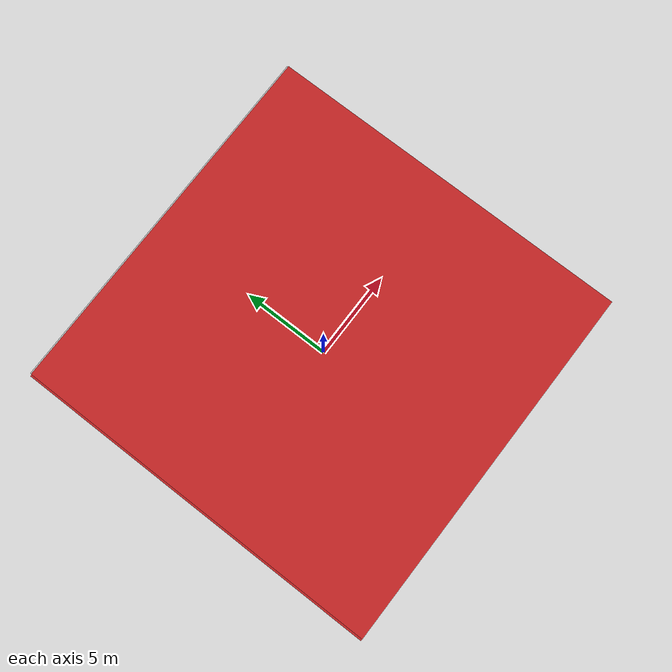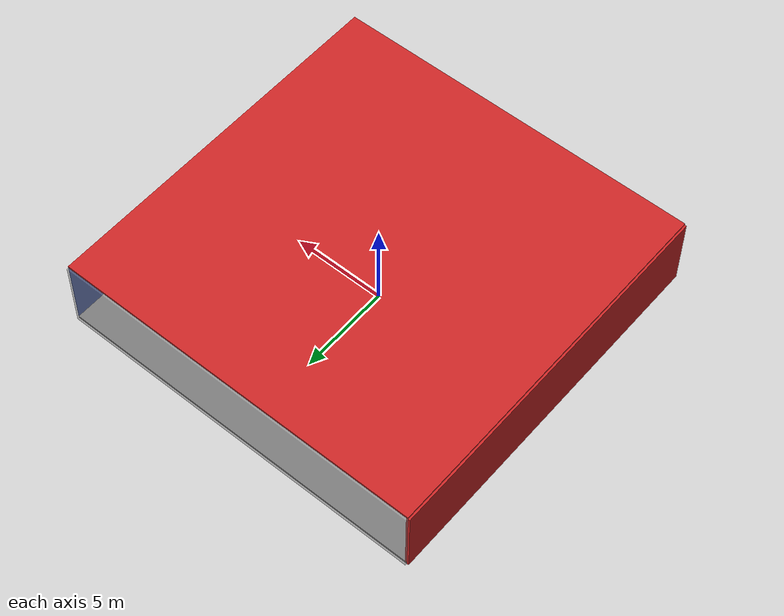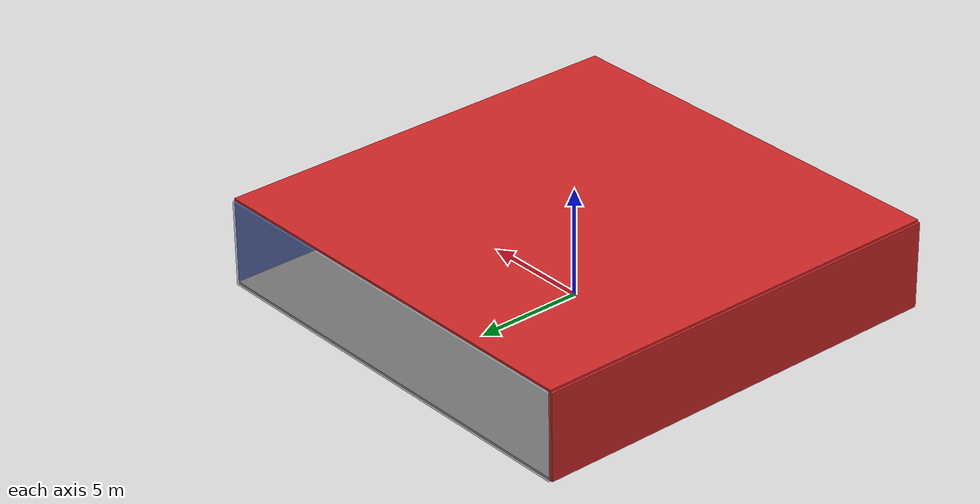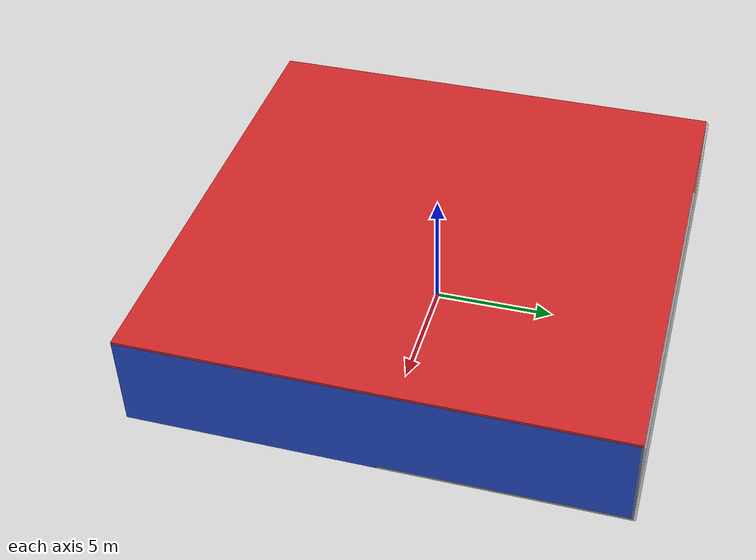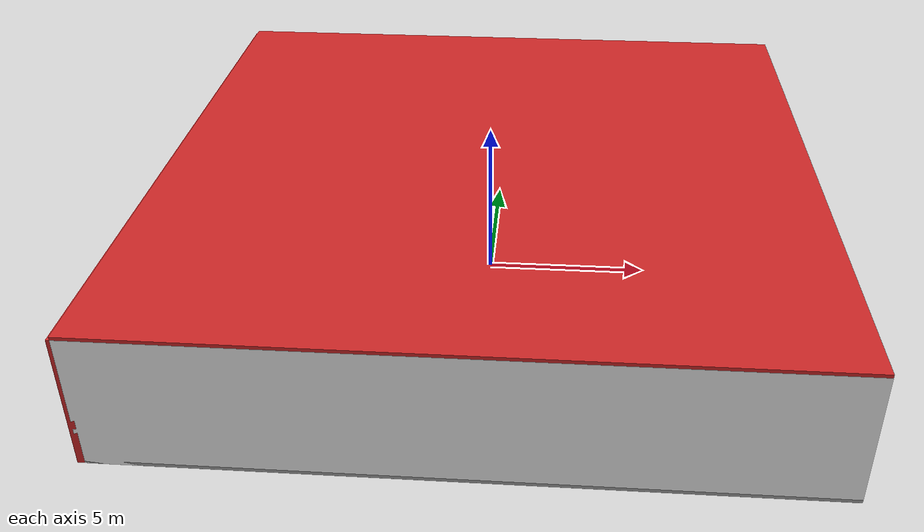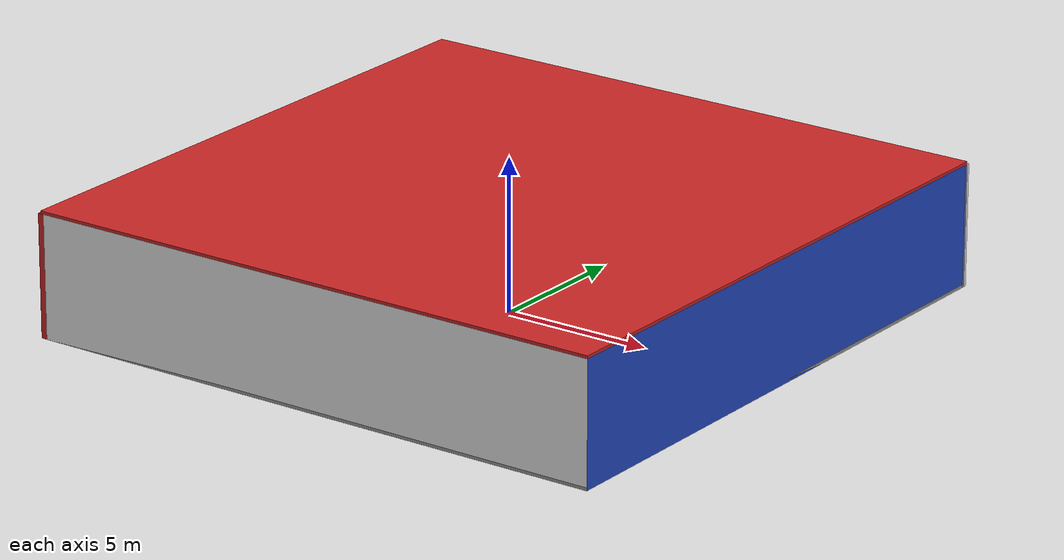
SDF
<sdf version="1.4">
 <world name="default">
  <physics type="ode">
   <max_step_size>0.001</max_step_size>
   <real_time_factor>1</real_time_factor>
   <real_time_update_rate>1000</real_time_update_rate>
   <gravity>0 0 -9.8</gravity>
  </physics>
  <scene><ambient>0.4 0.4 0.4 1</ambient><background>0.7 0.7 0.7 1</background><shadows>1</shadows></scene>
  <model name="Surrounding">
   <static>1</static>
   <link name="Ceiling">
    <collision name="Ceiling_Collision"><geometry><box><size>20 20 0.1</size></box></geometry></collision>
    <visual name="Ceiling_Visual">
     <geometry><box><size>20 20 0.1</size></box></geometry>
     <material>
      <script><uri>file://media/materials/scripts/gazebo.material</uri><name>Gazebo/RedGlow</name></script>
     </material>
    </visual>
    <pose>0 0 4.05 0 0 0</pose>
   </link>
   <link name="Wall_South">
    <collision name="Wall_South_Collision">
     <geometry><box><size>20 0 4</size></box></geometry>
     <pose>0 0 2 0 -0 0</pose>
    </collision>
    <visual name="Wall_South_Visual">
     <pose>0 0 2 0 -0 0</pose>
     <geometry><box><size>20 0 4</size></box></geometry>
     <material>
      <script><uri>file://media/materials/scripts/gazebo.material</uri><name>Gazebo/White</name></script>
     </material>
    </visual>
    <velocity_decay><linear>0</linear><angular>0</angular></velocity_decay>
    <pose>0 -10 0 0 -0 0</pose>
   </link>
   <link name="Wall_East">
    <collision name="Wall_21_Collision">
     <geometry><box><size>20 0 4</size></box></geometry>
     <pose>0 0 2 0 -0 0</pose>
    </collision>
    <visual name="Wall_21_Visual">
     <pose>0 0 2 0 -0 0</pose>
     <geometry><box><size>20 0 4</size></box></geometry>
     <material>
      <script><uri>file://media/materials/scripts/gazebo.material</uri><name>Gazebo/BlueLaser</name></script>
     </material>
    </visual>
    <velocity_decay><linear>0</linear><angular>0</angular></velocity_decay>
    <pose>10 0 0 0 -0 1.5708</pose>
   </link>
   <link name="Wall_North">
    <collision name="Wall_22_Collision">
     <geometry><box><size>20 0.2 4</size></box></geometry>
     <pose>0 0 2 0 -0 0</pose>
    </collision>
    <visual name="Wall_22_Visual">
     <pose>0 0 2 0 -0 0</pose>
     <geometry><box><size>20 0.2 4</size></box></geometry>
     <material>
      <script><uri>file://media/materials/scripts/gazebo.material</uri><name>Gazebo/GreyTransparent</name></script>
     </material>
    </visual>
    <velocity_decay><linear>0</linear><angular>0</angular></velocity_decay>
    <pose>0 10 0 0 -0 0</pose>
   </link>
   <link name="Wall_West">
    <collision name="Wall_23_Collision">
     <geometry><box><size>20 0.2 4</size></box></geometry>
     <pose>0 0 2 0 -0 0</pose>
    </collision>
    <visual name="Wall_23_Visual">
     <pose>0 0 2 0 -0 0</pose>
     <geometry><box><size>20 0.2 4</size></box></geometry>
     <material>
      <script><uri>file://media/materials/scripts/gazebo.material</uri><name>Gazebo/Red</name></script>
     </material>
    </visual>
    <velocity_decay><linear>0</linear><angular>0</angular></velocity_decay>
    <pose>-10 0 0 0 0 -1.5708</pose>
   </link>
   <link name="Ground_link">
    <collision name="collision">
     <pose>0 0 .05 0 -0 0</pose>
     <geometry><box><size>20 20 0.1</size></box></geometry>
    </collision>
    <visual name="visual">
     <pose>0 0 .05 0 -0 0</pose>
     <geometry><box><size>20 20 0.1</size></box></geometry>
     <material>
      <script><uri>file://media/materials/scripts/gazebo.material</uri><name>Gazebo/GreyGradientSky</name></script>
     </material>
    </visual>
   </link>
   <static>1</static>
  </model>
  <spherical_coordinates>
   <surface_model>EARTH_WGS84</surface_model>
   <latitude_deg>0</latitude_deg>
   <longitude_deg>0</longitude_deg>
   <elevation>0</elevation>
   <heading_deg>0</heading_deg>
  </spherical_coordinates>
  <light name="lightball_0" type="diffuse">
   <diffuse>0.8 0.8 0.8 1</diffuse>
   <specular>0.2 0.2 0.2 1</specular>
   <attenuation>
    <range>100</range>
    <constant>0.7</constant>
    <linear>0.01</linear>
    <quadratic>0.001</quadratic>
   </attenuation>
   <direction>-0.5 0.1 -0.9</direction>
   <pose>-8.67026886441 0.0831921922615 3.48678445914 0 0 0</pose>
  </light>
  <light name="lightball_1" type="diffuse">
   <diffuse>0.8 0.8 0.8 1</diffuse>
   <specular>0.2 0.2 0.2 1</specular>
   <attenuation>
    <range>100</range>
    <constant>0.7</constant>
    <linear>0.01</linear>
    <quadratic>0.001</quadratic>
   </attenuation>
   <direction>-0.5 0.1 -0.9</direction>
   <pose>-7.45395288097 -1.16026216075 1.20664308492 0 0 0</pose>
  </light>
  <light name="lightball_2" type="diffuse">
   <diffuse>0.8 0.8 0.8 1</diffuse>
   <specular>0.2 0.2 0.2 1</specular>
   <attenuation>
    <range>100</range>
    <constant>0.7</constant>
    <linear>0.01</linear>
    <quadratic>0.001</quadratic>
   </attenuation>
   <direction>-0.5 0.1 -0.9</direction>
   <pose>-3.46324629934 -4.49899643848 0.975919863453 0 0 0</pose>
  </light>
  <light name="lightball_3" type="diffuse">
   <diffuse>0.8 0.8 0.8 1</diffuse>
   <specular>0.2 0.2 0.2 1</specular>
   <attenuation>
    <range>100</range>
    <constant>0.7</constant>
    <linear>0.01</linear>
    <quadratic>0.001</quadratic>
   </attenuation>
   <direction>-0.5 0.1 -0.9</direction>
   <pose>3.97959510562 1.19172269223 0.676498102938 0 0 0</pose>
  </light>
  <light name="lightball_4" type="diffuse">
   <diffuse>0.8 0.8 0.8 1</diffuse>
   <specular>0.2 0.2 0.2 1</specular>
   <attenuation>
    <range>100</range>
    <constant>0.7</constant>
    <linear>0.01</linear>
    <quadratic>0.001</quadratic>
   </attenuation>
   <direction>-0.5 0.1 -0.9</direction>
   <pose>2.22698873343 3.73814934388 2.25643282818 0 0 0</pose>
  </light>
  <light name="lightball_5" type="diffuse">
   <diffuse>0.8 0.8 0.8 1</diffuse>
   <specular>0.2 0.2 0.2 1</specular>
   <attenuation>
    <range>100</range>
    <constant>0.7</constant>
    <linear>0.01</linear>
    <quadratic>0.001</quadratic>
   </attenuation>
   <direction>-0.5 0.1 -0.9</direction>
   <pose>-5.47748158796 3.92614866832 1.49904729425 0 0 0</pose>
  </light>
  <light name="lightball_6" type="diffuse">
   <diffuse>0.8 0.8 0.8 1</diffuse>
   <specular>0.2 0.2 0.2 1</specular>
   <attenuation>
    <range>100</range>
    <constant>0.7</constant>
    <linear>0.01</linear>
    <quadratic>0.001</quadratic>
   </attenuation>
   <direction>-0.5 0.1 -0.9</direction>
   <pose>5.64506115873 3.21300044874 1.92933345433 0 0 0</pose>
  </light>
  <light name="lightball_7" type="diffuse">
   <diffuse>0.8 0.8 0.8 1</diffuse>
   <specular>0.2 0.2 0.2 1</specular>
   <attenuation>
    <range>100</range>
    <constant>0.7</constant>
    <linear>0.01</linear>
    <quadratic>0.001</quadratic>
   </attenuation>
   <direction>-0.5 0.1 -0.9</direction>
   <pose>-0.218691169486 -0.176321571037 1.02025843321 0 0 0</pose>
  </light>
  <light name="lightball_8" type="diffuse">
   <diffuse>0.8 0.8 0.8 1</diffuse>
   <specular>0.2 0.2 0.2 1</specular>
   <attenuation>
    <range>100</range>
    <constant>0.7</constant>
    <linear>0.01</linear>
    <quadratic>0.001</quadratic>
   </attenuation>
   <direction>-0.5 0.1 -0.9</direction>
   <pose>7.89603061115 0.335727801971 0.991365546291 0 0 0</pose>
  </light>
  <light name="lightball_9" type="diffuse">
   <diffuse>0.8 0.8 0.8 1</diffuse>
   <specular>0.2 0.2 0.2 1</specular>
   <attenuation>
    <range>100</range>
    <constant>0.7</constant>
    <linear>0.01</linear>
    <quadratic>0.001</quadratic>
   </attenuation>
   <direction>-0.5 0.1 -0.9</direction>
   <pose>-3.84657975552 7.25738488523 1.34301533657 0 0 0</pose>
  </light>
  <light name="lightball_10" type="diffuse">
   <diffuse>0.8 0.8 0.8 1</diffuse>
   <specular>0.2 0.2 0.2 1</specular>
   <attenuation>
    <range>100</range>
    <constant>0.7</constant>
    <linear>0.01</linear>
    <quadratic>0.001</quadratic>
   </attenuation>
   <direction>-0.5 0.1 -0.9</direction>
   <pose>-4.08366968312 8.22430918685 2.67780125541 0 0 0</pose>
  </light>
  <include>
   <uri>model://robocup_3Dsim_goal</uri>
   <pose>-7.38045545316 -3.46311217597 0 0 0 1.78950554989</pose>
  </include>
  <include>
   <uri>model://construction_cone</uri>
   <pose>-3.35275298119 -4.44911471954 0 0 0 2.17052280164</pose>
  </include>
  <include><uri>model://cabinet</uri><pose>-0.317231428035 -7.54420279462 0 0 0 2.70623449442</pose></include>
  <include><uri>model://cabinet</uri><pose>-1.19182881276 -1.2200905628 0 0 0 0.164401389442</pose></include>
  <include>
   <uri>model://textured_shapes</uri>
   <pose>2.65606290586 4.46015233805 0 0 0 1.55591898686</pose>
  </include>
 </world>
</sdf>

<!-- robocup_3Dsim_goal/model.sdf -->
<sdf version="1.5">
  <model name="robocup_3d_goal">
    <static>true</static>
    <link name="left_post">
      <pose>0 1.05 0.45 0 0 0</pose>
      <collision name="collision">
        <geometry>
          <cylinder>
            <radius>0.05</radius>
            <length>0.9</length>
          </cylinder>
        </geometry>
      </collision>
      <visual name="visual">
        <geometry>
          <cylinder>
            <radius>0.05</radius>
            <length>0.9</length>
          </cylinder>
        </geometry>
        <material>
          <script>
            <uri>file://media/materials/scripts/gazebo.material</uri>
            <name>Gazebo/ZincYellow</name>
          </script>
        </material>
      </visual>
    </link>
    <link name="left_support_horiz_lower">
      <pose>0.30 1.05 0.01 0 0 0</pose>
      <collision name="collision">
        <geometry>
          <box>
            <size>0.50 0.02 0.02</size>
          </box>
        </geometry>
      </collision>
      <visual name="visual">
        <geometry>
          <box>
            <size>0.50 0.02 0.02</size>
          </box>
        </geometry>
        <material>
          <script>
            <uri>file://media/materials/scripts/gazebo.material</uri>
            <name>Gazebo/White</name>
          </script>
        </material>
      </visual>
    </link>
    <link name="left_support_horiz_upper">
      <pose>0.30 1.05 0.79 0 0 0</pose>
      <collision name="collision">
        <geometry>
          <box>
            <size>0.50 0.02 0.02</size>
          </box>
        </geometry>
      </collision>
      <visual name="visual">
        <geometry>
          <box>
            <size>0.50 0.02 0.02</size>
          </box>
        </geometry>
        <material>
          <script>
            <uri>file://media/materials/scripts/gazebo.material</uri>
            <name>Gazebo/White</name>
          </script>
        </material>
      </visual>
    </link>
    <link name="left_support_vertical">
      <pose>0.56 1.05 0.4 0 1.5708 0</pose>
      <collision name="collision">
        <geometry>
          <box>
            <size>0.80 0.02 0.02</size>
          </box>
        </geometry>
      </collision>
      <visual name="visual">
        <geometry>
          <box>
            <size>0.80 0.02 0.02</size>
          </box>
        </geometry>
        <material>
          <script>
            <uri>file://media/materials/scripts/gazebo.material</uri>
            <name>Gazebo/White</name>
          </script>
        </material>
      </visual>
    </link>
    <link name="right_support_horiz_lower">
      <pose>0.30 -1.05 0.01 0 0 0</pose>
      <collision name="collision">
        <geometry>
          <box>
            <size>0.50 0.02 0.02</size>
          </box>
        </geometry>
      </collision>
      <visual name="visual">
        <geometry>
          <box>
            <size>0.50 0.02 0.02</size>
          </box>
        </geometry>
        <material>
          <script>
            <uri>file://media/materials/scripts/gazebo.material</uri>
            <name>Gazebo/White</name>
          </script>
        </material>
      </visual>
    </link>
    <link name="right_support_horiz_upper">
      <pose>0.30 -1.05 0.79 0 0 0</pose>
      <collision name="collision">
        <geometry>
          <box>
            <size>0.50 0.02 0.02</size>
          </box>
        </geometry>
      </collision>
      <visual name="visual">
        <geometry>
          <box>
            <size>0.50 0.02 0.02</size>
          </box>
        </geometry>
        <material>
          <script>
            <uri>file://media/materials/scripts/gazebo.material</uri>
            <name>Gazebo/White</name>
          </script>
        </material>
      </visual>
    </link>
    <link name="right_support_vertical">
      <pose>0.56 -1.05 0.4 0 1.5708 0</pose>
      <collision name="collision">
        <geometry>
          <box>
            <size>0.80 0.02 0.02</size>
          </box>
        </geometry>
      </collision>
      <visual name="visual">
        <geometry>
          <box>
            <size>0.80 0.02 0.02</size>
          </box>
        </geometry>
        <material>
          <script>
            <uri>file://media/materials/scripts/gazebo.material</uri>
            <name>Gazebo/White</name>
          </script>
        </material>
      </visual>
    </link>
    <link name="center_support_horiz_lower">
      <pose>0.56 0 0.01 0 1.5708 0</pose>
      <collision name="collision">
        <geometry>
          <box>
            <size>0.02 2.08 0.02</size>
          </box>
        </geometry>
      </collision>
      <visual name="visual">
        <geometry>
          <box>
            <size>0.02 2.08 0.02</size>
          </box>
        </geometry>
        <material>
          <script>
            <uri>file://media/materials/scripts/gazebo.material</uri>
            <name>Gazebo/White</name>
          </script>
        </material>
      </visual>
    </link>
    <link name="center_support_horiz_upper">
      <pose>0.56 0 0.79 0 1.5708 0</pose>
      <collision name="collision">
        <geometry>
          <box>
            <size>0.02 2.08 0.02</size>
          </box>
        </geometry>
      </collision>
      <visual name="visual">
        <geometry>
          <box>
            <size>0.02 2.08 0.02</size>
          </box>
        </geometry>
        <material>
          <script>
            <uri>file://media/materials/scripts/gazebo.material</uri>
            <name>Gazebo/White</name>
          </script>
        </material>
      </visual>
    </link>
    <link name="right_post">
      <pose>0 -1.05 0.45 0 0 0</pose>
      <collision name="collision">
        <geometry>
          <cylinder>
            <radius>0.05</radius>
            <length>0.9</length>
          </cylinder>
        </geometry>
      </collision>
      <visual name="visual">
        <geometry>
          <cylinder>
            <radius>0.05</radius>
            <length>0.9</length>
          </cylinder>
        </geometry>
        <material>
          <script>
            <uri>file://media/materials/scripts/gazebo.material</uri>
            <name>Gazebo/ZincYellow</name>
          </script>
        </material>
      </visual>
    </link>
    <link name="crossbar">
      <pose>0 0 0.85 1.57 1.57 0</pose>
      <collision name="collision">
        <geometry>
          <cylinder>
            <radius>0.05</radius>
            <length>2.0</length>
          </cylinder>
        </geometry>
      </collision>
      <visual name="visual">
        <geometry>
          <cylinder>
            <radius>0.05</radius>
            <length>2.0</length>
          </cylinder>
        </geometry>
        <material>
          <script>
            <uri>file://media/materials/scripts/gazebo.material</uri>
            <name>Gazebo/ZincYellow</name>
          </script>
        </material>
      </visual>
    </link>
    <link name="center_net">
      <pose>0.56 0 0.40 0 0 0</pose>
      <collision name="collision">
        <geometry>
          <box>
            <size>0.01 2.1 0.80</size>
          </box>
        </geometry>
      </collision>
      <visual name="visual">
        <geometry>
          <box>
            <size>0.01 2.1 0.80</size>
          </box>
        </geometry>
        <material>
          <script>
            <uri>model://../model_source/models/robocup09_spl_field/materials/scripts/</uri>
            <uri>model://../model_source/models/robocup09_spl_field/materials/textures/</uri>
            <name>RoboCup/Net</name>
          </script>
        </material>
      </visual>
    </link>
    <link name="left_net">
      <pose>0.30 1.05 0.40 0 0 0</pose>
      <collision name="collision">
        <geometry>
          <box>
            <size>0.50 0.01 0.76</size>
          </box>
        </geometry>
      </collision>
      <visual name="visual">
        <geometry>
          <box>
            <size>0.50 0.01 0.76</size>
          </box>
        </geometry>
        <material>
          <script>
            <uri>model://../model_source/models/robocup09_spl_field/materials/scripts/</uri>
            <uri>model://../model_source/models/robocup09_spl_field/materials/textures/</uri>
            <name>RoboCup/Net</name>
          </script>
        </material>
      </visual>
    </link>
    <link name="right_net">
      <pose>0.30 -1.05 0.40 0 0 0</pose>
      <collision name="collision">
        <geometry>
          <box>
            <size>0.50 0.01 0.76</size>
          </box>
        </geometry>
      </collision>
      <visual name="visual">
        <geometry>
          <box>
            <size>0.50 0.01 0.76</size>
          </box>
        </geometry>
        <material>
          <script>
            <uri>model://../model_source/models/robocup09_spl_field/materials/scripts/</uri>
            <uri>model://../model_source/models/robocup09_spl_field/materials/textures/</uri>
            <name>RoboCup/Net</name>
          </script>
        </material>
      </visual>
    </link>
  </model>
</sdf>

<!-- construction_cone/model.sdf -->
<sdf version="1.5">
  <model name="Construction Cone">
    <link name="link">
      <collision name="collision">
        <geometry>
          <mesh>
            <scale>10 10 10</scale>
            <uri>file://isr-testbed/construction_cone/meshes/construction_cone.dae</uri>
          </mesh>
        </geometry>
      </collision>
      <visual name="visual">
        <geometry>
          <mesh>
            <scale>10 10 10</scale>
            <uri>file://isr-testbed/construction_cone/meshes/construction_cone.dae</uri>
          </mesh>
        </geometry>
      </visual>
    </link>
  </model>
</sdf>

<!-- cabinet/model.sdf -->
<sdf version="1.5">
  <model name="cabinet">
    <static>true</static>
    <link name="cabinet_bottom_plate">
      <inertial>
        <pose>0 0 -1 0 0 0</pose>
        <inertia>
          <ixx>2.050000</ixx>
          <ixy>0</ixy>
          <ixz>0</ixz>
          <iyy>2.050000</iyy>
          <iyz>0</iyz>
          <izz>2.050000</izz>
        </inertia>
        <mass>25.000000</mass>
      </inertial>
      <collision name="cabinet_bottom_plate_geom">
        <pose>0 0 0.010000 0 0 0</pose>
        <geometry>
          <box>
            <size>0.450000 0.450000 0.020000</size>
          </box>
        </geometry>
      </collision>
      <visual name="cabinet_bottom_plate_geom_visual">
        <pose>0 0 0.010000 0 0 0</pose>
        <geometry>
          <box>
            <size>0.450000 0.450000 0.020000</size>
          </box>
        </geometry>
        <material>
          <script>
            <uri>model://media/materials/scripts/gazebo.material</uri>
            <name>Gazebo/Wood</name>
          </script>
        </material>
      </visual>
      <collision name="cabinet_bottom_plate_geom_cabinet_back_plate">
        <pose>0.235000 0 0.510000 0 0 0</pose>
        <geometry>
          <box>
            <size>0.020000 0.450000 1.020000</size>
          </box>
        </geometry>
      </collision>
      <visual name="cabinet_bottom_plate_geom_cabinet_back_plate_visual">
        <pose>0.235000 0 0.510000 0 0 0</pose>
        <geometry>
          <box>
            <size>0.020000 0.450000 1.020000</size>
          </box>
        </geometry>
        <material>
          <script>
            <uri>model://media/materials/scripts/gazebo.material</uri>
            <name>Gazebo/Wood</name>
          </script>
        </material>
      </visual>
      <collision name="cabinet_bottom_plate_geom_cabinet_left_plate">
        <pose>0 0.235000 0.510000 0 0 0</pose>
        <geometry>
          <box>
            <size>0.450000 0.020000 1.020000</size>
          </box>
        </geometry>
      </collision>
      <visual name="cabinet_bottom_plate_geom_cabinet_left_plate_visual">
        <pose>0 0.235000 0.510000 0 0 0</pose>
        <geometry>
          <box>
            <size>0.450000 0.020000 1.020000</size>
          </box>
        </geometry>
        <material>
          <script>
            <uri>model://media/materials/scripts/gazebo.material</uri>
            <name>Gazebo/Wood</name>
          </script>
        </material>
      </visual>
      <collision name="cabinet_bottom_plate_geom_cabinet_middle_plate">
        <pose>0 0 0.510000 0 0 0</pose>
        <geometry>
          <box>
            <size>0.450000 0.450000 0.020000</size>
          </box>
        </geometry>
      </collision>
      <visual name="cabinet_bottom_plate_geom_cabinet_middle_plate_visual">
        <pose>0 0 0.510000 0 0 0</pose>
        <geometry>
          <box>
            <size>0.450000 0.450000 0.020000</size>
          </box>
        </geometry>
        <material>
          <script>
            <uri>model://media/materials/scripts/gazebo.material</uri>
            <name>Gazebo/Wood</name>
          </script>
        </material>
      </visual>
      <collision name="cabinet_bottom_plate_geom_cabinet_right_plate">
        <pose>0 -0.235000 0.510000 0 0 0</pose>
        <geometry>
          <box>
            <size>0.450000 0.020000 1.020000</size>
          </box>
        </geometry>
      </collision>
      <visual name="cabinet_bottom_plate_geom_cabinet_right_plate_visual">
        <pose>0 -0.235000 0.510000 0 0 0</pose>
        <geometry>
          <box>
            <size>0.450000 0.020000 1.020000</size>
          </box>
        </geometry>
        <material>
          <script>
            <uri>model://media/materials/scripts/gazebo.material</uri>
            <name>Gazebo/Wood</name>
          </script>
        </material>
      </visual>
      <collision name="cabinet_bottom_plate_geom_cabinet_top_plate">
        <pose>0 0 1.010000 0 0 0</pose>
        <geometry>
          <box>
            <size>0.450000 0.450000 0.020000</size>
          </box>
        </geometry>
      </collision>
      <visual name="cabinet_bottom_plate_geom_cabinet_top_plate_visual">
        <pose>0 0 1.010000 0 0 0</pose>
        <geometry>
          <box>
            <size>0.450000 0.450000 0.020000</size>
          </box>
        </geometry>
        <material>
          <script>
            <uri>model://media/materials/scripts/gazebo.material</uri>
            <name>Gazebo/Wood</name>
          </script>
        </material>
      </visual>
    </link>
  </model>
</sdf>

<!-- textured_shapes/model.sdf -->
<sdf version="1.6">
  <model name="textured_shapes">
    <pose>0 0 0.5 0 0 0</pose>
    <link name="box">
      <pose>0 -1.5 0 0 0 0</pose>
      <collision name="collision">
        <geometry>
          <box>
            <size>1 1 1</size>
          </box>
        </geometry>
      </collision>
      <visual name="visual">
        <geometry>
          <box>
            <size>1 1 1</size>
          </box>
        </geometry>
        <material>
          <script>
            <uri>model://../model_source/models/textured_shapes/materials/scripts</uri>
            <uri>model://../model_source/models/textured_shapes/materials/textures</uri>
            <name>TexturedShape/Squares</name>
          </script>
        </material>
      </visual>
    </link>
    <link name="sphere">
      <collision name="collision">
        <geometry>
          <sphere>
            <radius>0.5</radius>
          </sphere>
        </geometry>
      </collision>
      <visual name="visual">
        <geometry>
          <sphere>
            <radius>0.5</radius>
          </sphere>
        </geometry>
        <material>
          <script>
            <uri>model://../model_source/models/textured_shapes/materials/scripts</uri>
            <uri>model://../model_source/models/textured_shapes/materials/textures</uri>
            <name>TexturedShape/Squares</name>
          </script>
        </material>
      </visual>
    </link>
    <link name="cylinder">
      <pose>0 1.5 0 0 0 0</pose>
      <collision name="collision">
        <geometry>
          <cylinder>
            <radius>0.5</radius>
            <length>1</length>
          </cylinder>
        </geometry>
      </collision>
      <visual name="visual">
        <geometry>
          <cylinder>
            <radius>0.5</radius>
            <length>1</length>
          </cylinder>
        </geometry>
        <material>
          <script>
            <uri>model://../model_source/models/textured_shapes/materials/scripts</uri>
            <uri>model://../model_source/models/textured_shapes/materials/textures</uri>
            <name>TexturedShape/Squares</name>
          </script>
        </material>
      </visual>
    </link>
  </model>
</sdf>
